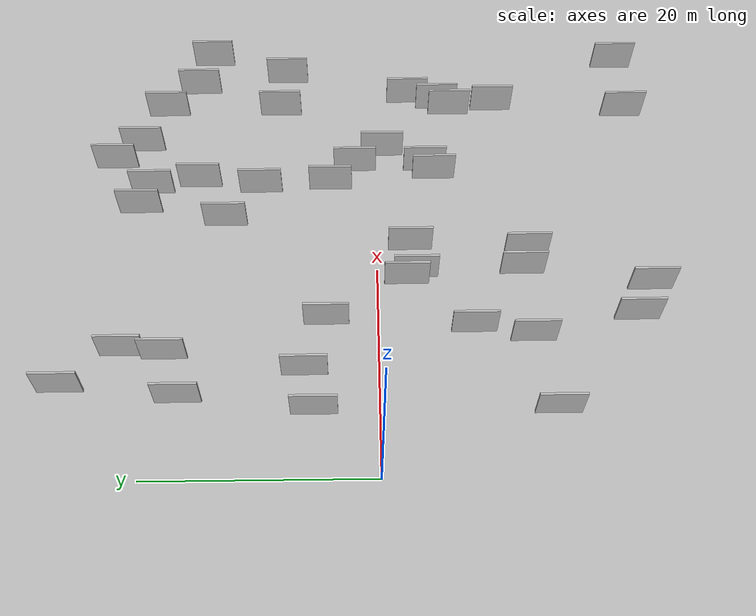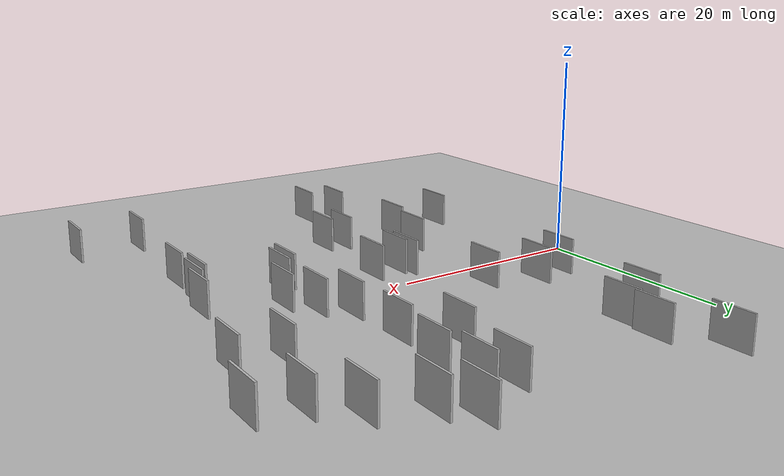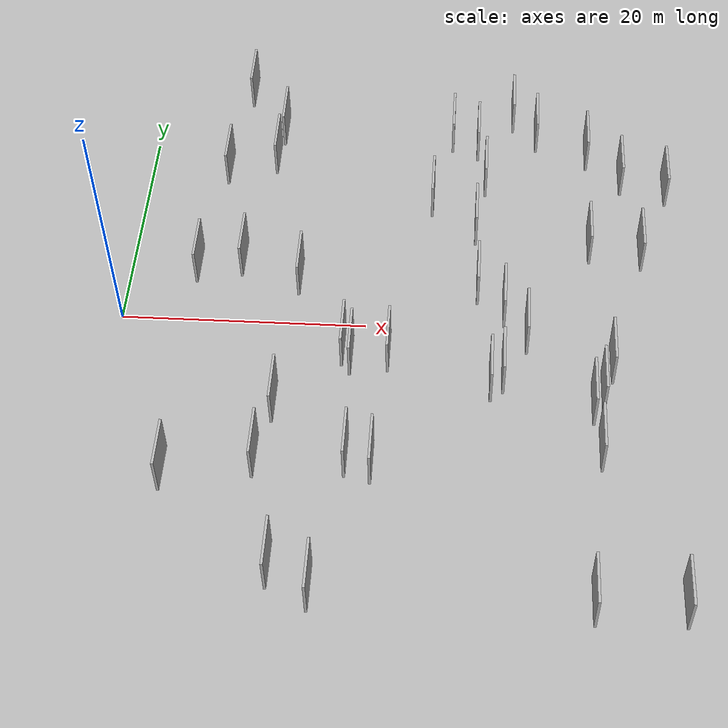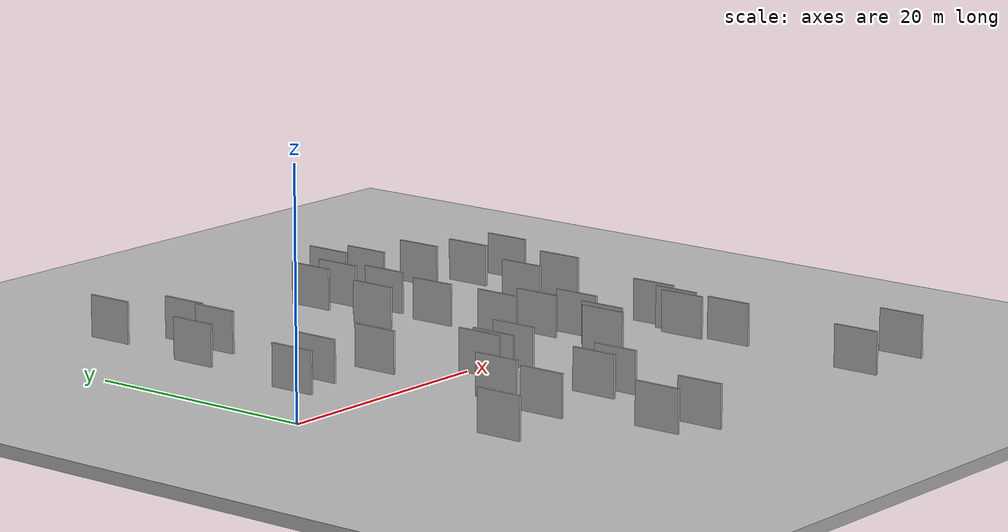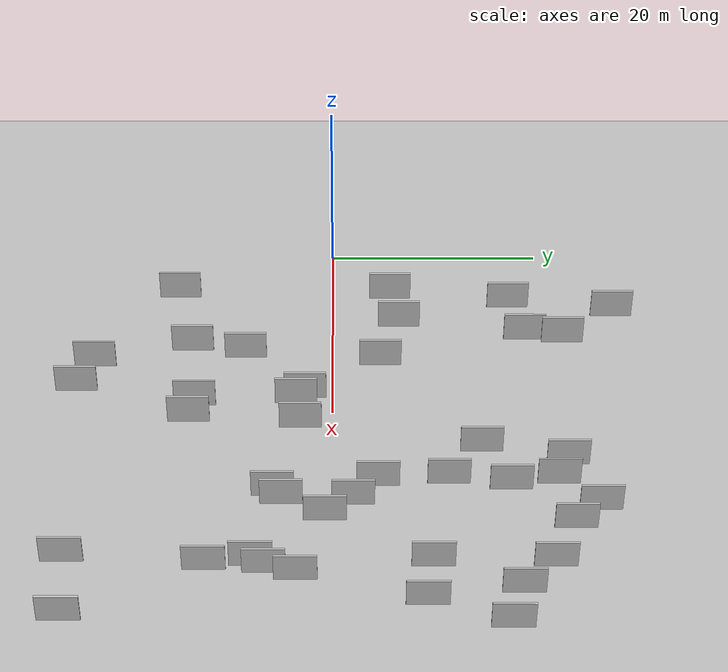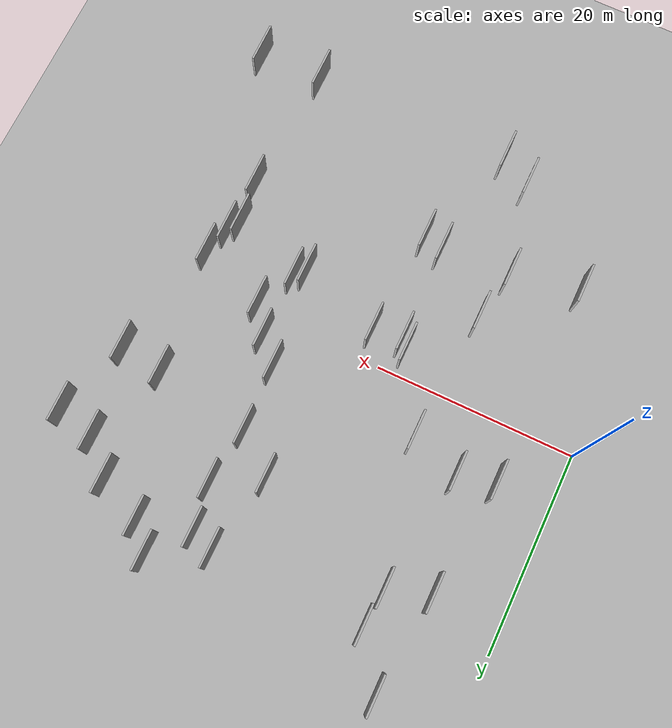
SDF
<?xml version="1.0" encoding="utf-8"?>

<sdf version="1.6">

   <world name="default">

      <gui fullscreen="0">

         <camera name="user_camera">

            <pose>-15 0 4.57585 0 0 0</pose>

            <view_controller>orbit</view_controller>

         </camera>

      </gui>

      <scene>

         <sky>

           <clouds>

             <speed>12</speed>

           </clouds>

         </sky>

         <ambient>0.4 0.4 0.4 1</ambient>

         <background>0.7 0.7 0.7 1</background>

         <shadows>1</shadows>

      </scene>

      <gravity>0 0 -9.8066</gravity>

      <magnetic_field>6e-06 2.3e-05 -4.2e-05</magnetic_field>

      <physics default="0" name="default_physics" type="ode">

         <ode>

            <solver>

               <type>quick</type>

               <iters>10</iters>

               <sor>1.0</sor>

               <use_dynamic_moi_rescaling>0</use_dynamic_moi_rescaling>

            </solver>

            <constraints>

               <cfm>0</cfm>

               <erp>0.2</erp>

               <contact_max_correcting_vel>100</contact_max_correcting_vel>

               <contact_surface_layer>0.001</contact_surface_layer>

            </constraints>

         </ode>

         <max_step_size>0.004</max_step_size>

         <real_time_factor>1</real_time_factor>

         <real_time_update_rate>250</real_time_update_rate>

      </physics>

      <light name="sun" type="directional">

         <cast_shadows>1</cast_shadows>

         <pose>0 0 10 0 0 0</pose>

         <diffuse>0.8 0.8 0.8 1</diffuse>

         <specular>0.2 0.2 0.2 1</specular>

         <attenuation>

            <range>1000</range>

            <constant>0.9</constant>

            <linear>0.01</linear>

            <quadratic>0.001</quadratic>

         </attenuation>

         <direction>-0.5 0.1 -0.9</direction>

      </light>

      <include>

         <name>ground_plane_1</name>

         <uri>model://HANNAS_ground_plane</uri>

         <pose>0 0 0  0 0 0</pose>

      </include>

      <include>

         <name>ground_plane_2</name>

         <uri>model://HANNAS_ground_plane</uri>

         <pose>100 0 0  0 0 0</pose>

      </include>

      <model name="HANNAS_wall_1">

         <static>1</static>

         <pose frame="">29.4806 16.6996 0.0 0.000000 0.000000 1.570796</pose>

         <link name="link">

            <pose frame="">0 0 2.00 0 0 0</pose>

            <collision name="collision">

               <geometry>

                  <box>

                     <size>4.00 0.2 4.00</size>

                  </box>

               </geometry>

               <max_contacts>10</max_contacts>

               <surface>

                  <contact>

                     <ode/>

                  </contact>

                  <bounce/>

                  <friction>

                     <torsional>

                        <ode/>

                     </torsional>

                     <ode/>

                  </friction>

               </surface>

            </collision>

            <visual name="visual">

               <cast_shadows>0</cast_shadows>

               <geometry>

                  <box>

                     <size>4.00 0.2 4.00</size>

                  </box>

               </geometry>

               <material>

                  <script>

                     <uri>model://HANNAS_wall/materials/scripts</uri>

                     <uri>model://HANNAS_wall/materials/textures</uri>

                     <name>vrc/HANNAS_wall</name>

                  </script>

               </material>

            </visual>

            <self_collide>0</self_collide>

            <enable_wind>0</enable_wind>

            <kinematic>0</kinematic>

         </link>

      </model>

      <model name="HANNAS_wall_2">

         <static>1</static>

         <pose frame="">38.2699 -7.3570 0.0 0.000000 0.000000 1.570796</pose>

         <link name="link">

            <pose frame="">0 0 2.00 0 0 0</pose>

            <collision name="collision">

               <geometry>

                  <box>

                     <size>4.00 0.2 4.00</size>

                  </box>

               </geometry>

               <max_contacts>10</max_contacts>

               <surface>

                  <contact>

                     <ode/>

                  </contact>

                  <bounce/>

                  <friction>

                     <torsional>

                        <ode/>

                     </torsional>

                     <ode/>

                  </friction>

               </surface>

            </collision>

            <visual name="visual">

               <cast_shadows>0</cast_shadows>

               <geometry>

                  <box>

                     <size>4.00 0.2 4.00</size>

                  </box>

               </geometry>

               <material>

                  <script>

                     <uri>model://HANNAS_wall/materials/scripts</uri>

                     <uri>model://HANNAS_wall/materials/textures</uri>

                     <name>vrc/HANNAS_wall</name>

                  </script>

               </material>

            </visual>

            <self_collide>0</self_collide>

            <enable_wind>0</enable_wind>

            <kinematic>0</kinematic>

         </link>

      </model>

      <model name="HANNAS_wall_3">

         <static>1</static>

         <pose frame="">37.8273 -24.6019 0.0 0.000000 0.000000 1.570796</pose>

         <link name="link">

            <pose frame="">0 0 2.00 0 0 0</pose>

            <collision name="collision">

               <geometry>

                  <box>

                     <size>4.00 0.2 4.00</size>

                  </box>

               </geometry>

               <max_contacts>10</max_contacts>

               <surface>

                  <contact>

                     <ode/>

                  </contact>

                  <bounce/>

                  <friction>

                     <torsional>

                        <ode/>

                     </torsional>

                     <ode/>

                  </friction>

               </surface>

            </collision>

            <visual name="visual">

               <cast_shadows>0</cast_shadows>

               <geometry>

                  <box>

                     <size>4.00 0.2 4.00</size>

                  </box>

               </geometry>

               <material>

                  <script>

                     <uri>model://HANNAS_wall/materials/scripts</uri>

                     <uri>model://HANNAS_wall/materials/textures</uri>

                     <name>vrc/HANNAS_wall</name>

                  </script>

               </material>

            </visual>

            <self_collide>0</self_collide>

            <enable_wind>0</enable_wind>

            <kinematic>0</kinematic>

         </link>

      </model>

      <model name="HANNAS_wall_4">

         <static>1</static>

         <pose frame="">6.9023 17.1128 0.0 0.000000 0.000000 1.570796</pose>

         <link name="link">

            <pose frame="">0 0 2.00 0 0 0</pose>

            <collision name="collision">

               <geometry>

                  <box>

                     <size>4.00 0.2 4.00</size>

                  </box>

               </geometry>

               <max_contacts>10</max_contacts>

               <surface>

                  <contact>

                     <ode/>

                  </contact>

                  <bounce/>

                  <friction>

                     <torsional>

                        <ode/>

                     </torsional>

                     <ode/>

                  </friction>

               </surface>

            </collision>

            <visual name="visual">

               <cast_shadows>0</cast_shadows>

               <geometry>

                  <box>

                     <size>4.00 0.2 4.00</size>

                  </box>

               </geometry>

               <material>

                  <script>

                     <uri>model://HANNAS_wall/materials/scripts</uri>

                     <uri>model://HANNAS_wall/materials/textures</uri>

                     <name>vrc/HANNAS_wall</name>

                  </script>

               </material>

            </visual>

            <self_collide>0</self_collide>

            <enable_wind>0</enable_wind>

            <kinematic>0</kinematic>

         </link>

      </model>

      <model name="HANNAS_wall_5">

         <static>1</static>

         <pose frame="">26.5202 22.1270 0.0 0.000000 0.000000 1.570796</pose>

         <link name="link">

            <pose frame="">0 0 2.00 0 0 0</pose>

            <collision name="collision">

               <geometry>

                  <box>

                     <size>4.00 0.2 4.00</size>

                  </box>

               </geometry>

               <max_contacts>10</max_contacts>

               <surface>

                  <contact>

                     <ode/>

                  </contact>

                  <bounce/>

                  <friction>

                     <torsional>

                        <ode/>

                     </torsional>

                     <ode/>

                  </friction>

               </surface>

            </collision>

            <visual name="visual">

               <cast_shadows>0</cast_shadows>

               <geometry>

                  <box>

                     <size>4.00 0.2 4.00</size>

                  </box>

               </geometry>

               <material>

                  <script>

                     <uri>model://HANNAS_wall/materials/scripts</uri>

                     <uri>model://HANNAS_wall/materials/textures</uri>

                     <name>vrc/HANNAS_wall</name>

                  </script>

               </material>

            </visual>

            <self_collide>0</self_collide>

            <enable_wind>0</enable_wind>

            <kinematic>0</kinematic>

         </link>

      </model>

      <model name="HANNAS_wall_6">

         <static>1</static>

         <pose frame="">11.0349 18.6178 0.0 0.000000 0.000000 1.570796</pose>

         <link name="link">

            <pose frame="">0 0 2.00 0 0 0</pose>

            <collision name="collision">

               <geometry>

                  <box>

                     <size>4.00 0.2 4.00</size>

                  </box>

               </geometry>

               <max_contacts>10</max_contacts>

               <surface>

                  <contact>

                     <ode/>

                  </contact>

                  <bounce/>

                  <friction>

                     <torsional>

                        <ode/>

                     </torsional>

                     <ode/>

                  </friction>

               </surface>

            </collision>

            <visual name="visual">

               <cast_shadows>0</cast_shadows>

               <geometry>

                  <box>

                     <size>4.00 0.2 4.00</size>

                  </box>

               </geometry>

               <material>

                  <script>

                     <uri>model://HANNAS_wall/materials/scripts</uri>

                     <uri>model://HANNAS_wall/materials/textures</uri>

                     <name>vrc/HANNAS_wall</name>

                  </script>

               </material>

            </visual>

            <self_collide>0</self_collide>

            <enable_wind>0</enable_wind>

            <kinematic>0</kinematic>

         </link>

      </model>

      <model name="HANNAS_wall_7">

         <static>1</static>

         <pose frame="">5.6935 5.6017 0.0 0.000000 0.000000 1.570796</pose>

         <link name="link">

            <pose frame="">0 0 2.00 0 0 0</pose>

            <collision name="collision">

               <geometry>

                  <box>

                     <size>4.00 0.2 4.00</size>

                  </box>

               </geometry>

               <max_contacts>10</max_contacts>

               <surface>

                  <contact>

                     <ode/>

                  </contact>

                  <bounce/>

                  <friction>

                     <torsional>

                        <ode/>

                     </torsional>

                     <ode/>

                  </friction>

               </surface>

            </collision>

            <visual name="visual">

               <cast_shadows>0</cast_shadows>

               <geometry>

                  <box>

                     <size>4.00 0.2 4.00</size>

                  </box>

               </geometry>

               <material>

                  <script>

                     <uri>model://HANNAS_wall/materials/scripts</uri>

                     <uri>model://HANNAS_wall/materials/textures</uri>

                     <name>vrc/HANNAS_wall</name>

                  </script>

               </material>

            </visual>

            <self_collide>0</self_collide>

            <enable_wind>0</enable_wind>

            <kinematic>0</kinematic>

         </link>

      </model>

      <model name="HANNAS_wall_8">

         <static>1</static>

         <pose frame="">5.5831 -14.9222 0.0 0.000000 0.000000 1.570796</pose>

         <link name="link">

            <pose frame="">0 0 2.00 0 0 0</pose>

            <collision name="collision">

               <geometry>

                  <box>

                     <size>4.00 0.2 4.00</size>

                  </box>

               </geometry>

               <max_contacts>10</max_contacts>

               <surface>

                  <contact>

                     <ode/>

                  </contact>

                  <bounce/>

                  <friction>

                     <torsional>

                        <ode/>

                     </torsional>

                     <ode/>

                  </friction>

               </surface>

            </collision>

            <visual name="visual">

               <cast_shadows>0</cast_shadows>

               <geometry>

                  <box>

                     <size>4.00 0.2 4.00</size>

                  </box>

               </geometry>

               <material>

                  <script>

                     <uri>model://HANNAS_wall/materials/scripts</uri>

                     <uri>model://HANNAS_wall/materials/textures</uri>

                     <name>vrc/HANNAS_wall</name>

                  </script>

               </material>

            </visual>

            <self_collide>0</self_collide>

            <enable_wind>0</enable_wind>

            <kinematic>0</kinematic>

         </link>

      </model>

      <model name="HANNAS_wall_9">

         <static>1</static>

         <pose frame="">12.4474 -13.4820 0.0 0.000000 0.000000 1.570796</pose>

         <link name="link">

            <pose frame="">0 0 2.00 0 0 0</pose>

            <collision name="collision">

               <geometry>

                  <box>

                     <size>4.00 0.2 4.00</size>

                  </box>

               </geometry>

               <max_contacts>10</max_contacts>

               <surface>

                  <contact>

                     <ode/>

                  </contact>

                  <bounce/>

                  <friction>

                     <torsional>

                        <ode/>

                     </torsional>

                     <ode/>

                  </friction>

               </surface>

            </collision>

            <visual name="visual">

               <cast_shadows>0</cast_shadows>

               <geometry>

                  <box>

                     <size>4.00 0.2 4.00</size>

                  </box>

               </geometry>

               <material>

                  <script>

                     <uri>model://HANNAS_wall/materials/scripts</uri>

                     <uri>model://HANNAS_wall/materials/textures</uri>

                     <name>vrc/HANNAS_wall</name>

                  </script>

               </material>

            </visual>

            <self_collide>0</self_collide>

            <enable_wind>0</enable_wind>

            <kinematic>0</kinematic>

         </link>

      </model>

      <model name="HANNAS_wall_10">

         <static>1</static>

         <pose frame="">28.7693 10.9153 0.0 0.000000 0.000000 1.570796</pose>

         <link name="link">

            <pose frame="">0 0 2.00 0 0 0</pose>

            <collision name="collision">

               <geometry>

                  <box>

                     <size>4.00 0.2 4.00</size>

                  </box>

               </geometry>

               <max_contacts>10</max_contacts>

               <surface>

                  <contact>

                     <ode/>

                  </contact>

                  <bounce/>

                  <friction>

                     <torsional>

                        <ode/>

                     </torsional>

                     <ode/>

                  </friction>

               </surface>

            </collision>

            <visual name="visual">

               <cast_shadows>0</cast_shadows>

               <geometry>

                  <box>

                     <size>4.00 0.2 4.00</size>

                  </box>

               </geometry>

               <material>

                  <script>

                     <uri>model://HANNAS_wall/materials/scripts</uri>

                     <uri>model://HANNAS_wall/materials/textures</uri>

                     <name>vrc/HANNAS_wall</name>

                  </script>

               </material>

            </visual>

            <self_collide>0</self_collide>

            <enable_wind>0</enable_wind>

            <kinematic>0</kinematic>

         </link>

      </model>

      <model name="HANNAS_wall_11">

         <static>1</static>

         <pose frame="">42.6515 8.7122 0.0 0.000000 0.000000 1.570796</pose>

         <link name="link">

            <pose frame="">0 0 2.00 0 0 0</pose>

            <collision name="collision">

               <geometry>

                  <box>

                     <size>4.00 0.2 4.00</size>

                  </box>

               </geometry>

               <max_contacts>10</max_contacts>

               <surface>

                  <contact>

                     <ode/>

                  </contact>

                  <bounce/>

                  <friction>

                     <torsional>

                        <ode/>

                     </torsional>

                     <ode/>

                  </friction>

               </surface>

            </collision>

            <visual name="visual">

               <cast_shadows>0</cast_shadows>

               <geometry>

                  <box>

                     <size>4.00 0.2 4.00</size>

                  </box>

               </geometry>

               <material>

                  <script>

                     <uri>model://HANNAS_wall/materials/scripts</uri>

                     <uri>model://HANNAS_wall/materials/textures</uri>

                     <name>vrc/HANNAS_wall</name>

                  </script>

               </material>

            </visual>

            <self_collide>0</self_collide>

            <enable_wind>0</enable_wind>

            <kinematic>0</kinematic>

         </link>

      </model>

      <model name="HANNAS_wall_12">

         <static>1</static>

         <pose frame="">30.2467 -5.4993 0.0 0.000000 0.000000 1.570796</pose>

         <link name="link">

            <pose frame="">0 0 2.00 0 0 0</pose>

            <collision name="collision">

               <geometry>

                  <box>

                     <size>4.00 0.2 4.00</size>

                  </box>

               </geometry>

               <max_contacts>10</max_contacts>

               <surface>

                  <contact>

                     <ode/>

                  </contact>

                  <bounce/>

                  <friction>

                     <torsional>

                        <ode/>

                     </torsional>

                     <ode/>

                  </friction>

               </surface>

            </collision>

            <visual name="visual">

               <cast_shadows>0</cast_shadows>

               <geometry>

                  <box>

                     <size>4.00 0.2 4.00</size>

                  </box>

               </geometry>

               <material>

                  <script>

                     <uri>model://HANNAS_wall/materials/scripts</uri>

                     <uri>model://HANNAS_wall/materials/textures</uri>

                     <name>vrc/HANNAS_wall</name>

                  </script>

               </material>

            </visual>

            <self_collide>0</self_collide>

            <enable_wind>0</enable_wind>

            <kinematic>0</kinematic>

         </link>

      </model>

      <model name="HANNAS_wall_13">

         <static>1</static>

         <pose frame="">18.3872 -2.5767 0.0 0.000000 0.000000 1.570796</pose>

         <link name="link">

            <pose frame="">0 0 2.00 0 0 0</pose>

            <collision name="collision">

               <geometry>

                  <box>

                     <size>4.00 0.2 4.00</size>

                  </box>

               </geometry>

               <max_contacts>10</max_contacts>

               <surface>

                  <contact>

                     <ode/>

                  </contact>

                  <bounce/>

                  <friction>

                     <torsional>

                        <ode/>

                     </torsional>

                     <ode/>

                  </friction>

               </surface>

            </collision>

            <visual name="visual">

               <cast_shadows>0</cast_shadows>

               <geometry>

                  <box>

                     <size>4.00 0.2 4.00</size>

                  </box>

               </geometry>

               <material>

                  <script>

                     <uri>model://HANNAS_wall/materials/scripts</uri>

                     <uri>model://HANNAS_wall/materials/textures</uri>

                     <name>vrc/HANNAS_wall</name>

                  </script>

               </material>

            </visual>

            <self_collide>0</self_collide>

            <enable_wind>0</enable_wind>

            <kinematic>0</kinematic>

         </link>

      </model>

      <model name="HANNAS_wall_14">

         <static>1</static>

         <pose frame="">39.0741 -6.1592 0.0 0.000000 0.000000 1.570796</pose>

         <link name="link">

            <pose frame="">0 0 2.00 0 0 0</pose>

            <collision name="collision">

               <geometry>

                  <box>

                     <size>4.00 0.2 4.00</size>

                  </box>

               </geometry>

               <max_contacts>10</max_contacts>

               <surface>

                  <contact>

                     <ode/>

                  </contact>

                  <bounce/>

                  <friction>

                     <torsional>

                        <ode/>

                     </torsional>

                     <ode/>

                  </friction>

               </surface>

            </collision>

            <visual name="visual">

               <cast_shadows>0</cast_shadows>

               <geometry>

                  <box>

                     <size>4.00 0.2 4.00</size>

                  </box>

               </geometry>

               <material>

                  <script>

                     <uri>model://HANNAS_wall/materials/scripts</uri>

                     <uri>model://HANNAS_wall/materials/textures</uri>

                     <name>vrc/HANNAS_wall</name>

                  </script>

               </material>

            </visual>

            <self_collide>0</self_collide>

            <enable_wind>0</enable_wind>

            <kinematic>0</kinematic>

         </link>

      </model>

      <model name="HANNAS_wall_15">

         <static>1</static>

         <pose frame="">41.2561 17.4411 0.0 0.000000 0.000000 1.570796</pose>

         <link name="link">

            <pose frame="">0 0 2.00 0 0 0</pose>

            <collision name="collision">

               <geometry>

                  <box>

                     <size>4.00 0.2 4.00</size>

                  </box>

               </geometry>

               <max_contacts>10</max_contacts>

               <surface>

                  <contact>

                     <ode/>

                  </contact>

                  <bounce/>

                  <friction>

                     <torsional>

                        <ode/>

                     </torsional>

                     <ode/>

                  </friction>

               </surface>

            </collision>

            <visual name="visual">

               <cast_shadows>0</cast_shadows>

               <geometry>

                  <box>

                     <size>4.00 0.2 4.00</size>

                  </box>

               </geometry>

               <material>

                  <script>

                     <uri>model://HANNAS_wall/materials/scripts</uri>

                     <uri>model://HANNAS_wall/materials/textures</uri>

                     <name>vrc/HANNAS_wall</name>

                  </script>

               </material>

            </visual>

            <self_collide>0</self_collide>

            <enable_wind>0</enable_wind>

            <kinematic>0</kinematic>

         </link>

      </model>

      <model name="HANNAS_wall_16">

         <static>1</static>

         <pose frame="">38.3568 20.4341 0.0 0.000000 0.000000 1.570796</pose>

         <link name="link">

            <pose frame="">0 0 2.00 0 0 0</pose>

            <collision name="collision">

               <geometry>

                  <box>

                     <size>4.00 0.2 4.00</size>

                  </box>

               </geometry>

               <max_contacts>10</max_contacts>

               <surface>

                  <contact>

                     <ode/>

                  </contact>

                  <bounce/>

                  <friction>

                     <torsional>

                        <ode/>

                     </torsional>

                     <ode/>

                  </friction>

               </surface>

            </collision>

            <visual name="visual">

               <cast_shadows>0</cast_shadows>

               <geometry>

                  <box>

                     <size>4.00 0.2 4.00</size>

                  </box>

               </geometry>

               <material>

                  <script>

                     <uri>model://HANNAS_wall/materials/scripts</uri>

                     <uri>model://HANNAS_wall/materials/textures</uri>

                     <name>vrc/HANNAS_wall</name>

                  </script>

               </material>

            </visual>

            <self_collide>0</self_collide>

            <enable_wind>0</enable_wind>

            <kinematic>0</kinematic>

         </link>

      </model>

      <model name="HANNAS_wall_17">

         <static>1</static>

         <pose frame="">17.5660 -24.4572 0.0 0.000000 0.000000 1.570796</pose>

         <link name="link">

            <pose frame="">0 0 2.00 0 0 0</pose>

            <collision name="collision">

               <geometry>

                  <box>

                     <size>4.00 0.2 4.00</size>

                  </box>

               </geometry>

               <max_contacts>10</max_contacts>

               <surface>

                  <contact>

                     <ode/>

                  </contact>

                  <bounce/>

                  <friction>

                     <torsional>

                        <ode/>

                     </torsional>

                     <ode/>

                  </friction>

               </surface>

            </collision>

            <visual name="visual">

               <cast_shadows>0</cast_shadows>

               <geometry>

                  <box>

                     <size>4.00 0.2 4.00</size>

                  </box>

               </geometry>

               <material>

                  <script>

                     <uri>model://HANNAS_wall/materials/scripts</uri>

                     <uri>model://HANNAS_wall/materials/textures</uri>

                     <name>vrc/HANNAS_wall</name>

                  </script>

               </material>

            </visual>

            <self_collide>0</self_collide>

            <enable_wind>0</enable_wind>

            <kinematic>0</kinematic>

         </link>

      </model>

      <model name="HANNAS_wall_18">

         <static>1</static>

         <pose frame="">14.4751 -22.8161 0.0 0.000000 0.000000 1.570796</pose>

         <link name="link">

            <pose frame="">0 0 2.00 0 0 0</pose>

            <collision name="collision">

               <geometry>

                  <box>

                     <size>4.00 0.2 4.00</size>

                  </box>

               </geometry>

               <max_contacts>10</max_contacts>

               <surface>

                  <contact>

                     <ode/>

                  </contact>

                  <bounce/>

                  <friction>

                     <torsional>

                        <ode/>

                     </torsional>

                     <ode/>

                  </friction>

               </surface>

            </collision>

            <visual name="visual">

               <cast_shadows>0</cast_shadows>

               <geometry>

                  <box>

                     <size>4.00 0.2 4.00</size>

                  </box>

               </geometry>

               <material>

                  <script>

                     <uri>model://HANNAS_wall/materials/scripts</uri>

                     <uri>model://HANNAS_wall/materials/textures</uri>

                     <name>vrc/HANNAS_wall</name>

                  </script>

               </material>

            </visual>

            <self_collide>0</self_collide>

            <enable_wind>0</enable_wind>

            <kinematic>0</kinematic>

         </link>

      </model>

      <model name="HANNAS_wall_19">

         <static>1</static>

         <pose frame="">31.8663 24.9153 0.0 0.000000 0.000000 1.570796</pose>

         <link name="link">

            <pose frame="">0 0 2.00 0 0 0</pose>

            <collision name="collision">

               <geometry>

                  <box>

                     <size>4.00 0.2 4.00</size>

                  </box>

               </geometry>

               <max_contacts>10</max_contacts>

               <surface>

                  <contact>

                     <ode/>

                  </contact>

                  <bounce/>

                  <friction>

                     <torsional>

                        <ode/>

                     </torsional>

                     <ode/>

                  </friction>

               </surface>

            </collision>

            <visual name="visual">

               <cast_shadows>0</cast_shadows>

               <geometry>

                  <box>

                     <size>4.00 0.2 4.00</size>

                  </box>

               </geometry>

               <material>

                  <script>

                     <uri>model://HANNAS_wall/materials/scripts</uri>

                     <uri>model://HANNAS_wall/materials/textures</uri>

                     <name>vrc/HANNAS_wall</name>

                  </script>

               </material>

            </visual>

            <self_collide>0</self_collide>

            <enable_wind>0</enable_wind>

            <kinematic>0</kinematic>

         </link>

      </model>

      <model name="HANNAS_wall_20">

         <static>1</static>

         <pose frame="">31.2213 -4.6838 0.0 0.000000 0.000000 1.570796</pose>

         <link name="link">

            <pose frame="">0 0 2.00 0 0 0</pose>

            <collision name="collision">

               <geometry>

                  <box>

                     <size>4.00 0.2 4.00</size>

                  </box>

               </geometry>

               <max_contacts>10</max_contacts>

               <surface>

                  <contact>

                     <ode/>

                  </contact>

                  <bounce/>

                  <friction>

                     <torsional>

                        <ode/>

                     </torsional>

                     <ode/>

                  </friction>

               </surface>

            </collision>

            <visual name="visual">

               <cast_shadows>0</cast_shadows>

               <geometry>

                  <box>

                     <size>4.00 0.2 4.00</size>

                  </box>

               </geometry>

               <material>

                  <script>

                     <uri>model://HANNAS_wall/materials/scripts</uri>

                     <uri>model://HANNAS_wall/materials/textures</uri>

                     <name>vrc/HANNAS_wall</name>

                  </script>

               </material>

            </visual>

            <self_collide>0</self_collide>

            <enable_wind>0</enable_wind>

            <kinematic>0</kinematic>

         </link>

      </model>

      <model name="HANNAS_wall_21">

         <static>1</static>

         <pose frame="">13.3891 -8.3445 0.0 0.000000 0.000000 1.570796</pose>

         <link name="link">

            <pose frame="">0 0 2.00 0 0 0</pose>

            <collision name="collision">

               <geometry>

                  <box>

                     <size>4.00 0.2 4.00</size>

                  </box>

               </geometry>

               <max_contacts>10</max_contacts>

               <surface>

                  <contact>

                     <ode/>

                  </contact>

                  <bounce/>

                  <friction>

                     <torsional>

                        <ode/>

                     </torsional>

                     <ode/>

                  </friction>

               </surface>

            </collision>

            <visual name="visual">

               <cast_shadows>0</cast_shadows>

               <geometry>

                  <box>

                     <size>4.00 0.2 4.00</size>

                  </box>

               </geometry>

               <material>

                  <script>

                     <uri>model://HANNAS_wall/materials/scripts</uri>

                     <uri>model://HANNAS_wall/materials/textures</uri>

                     <name>vrc/HANNAS_wall</name>

                  </script>

               </material>

            </visual>

            <self_collide>0</self_collide>

            <enable_wind>0</enable_wind>

            <kinematic>0</kinematic>

         </link>

      </model>

      <model name="HANNAS_wall_22">

         <static>1</static>

         <pose frame="">33.0888 -0.6318 0.0 0.000000 0.000000 1.570796</pose>

         <link name="link">

            <pose frame="">0 0 2.00 0 0 0</pose>

            <collision name="collision">

               <geometry>

                  <box>

                     <size>4.00 0.2 4.00</size>

                  </box>

               </geometry>

               <max_contacts>10</max_contacts>

               <surface>

                  <contact>

                     <ode/>

                  </contact>

                  <bounce/>

                  <friction>

                     <torsional>

                        <ode/>

                     </torsional>

                     <ode/>

                  </friction>

               </surface>

            </collision>

            <visual name="visual">

               <cast_shadows>0</cast_shadows>

               <geometry>

                  <box>

                     <size>4.00 0.2 4.00</size>

                  </box>

               </geometry>

               <material>

                  <script>

                     <uri>model://HANNAS_wall/materials/scripts</uri>

                     <uri>model://HANNAS_wall/materials/textures</uri>

                     <name>vrc/HANNAS_wall</name>

                  </script>

               </material>

            </visual>

            <self_collide>0</self_collide>

            <enable_wind>0</enable_wind>

            <kinematic>0</kinematic>

         </link>

      </model>

      <model name="HANNAS_wall_23">

         <static>1</static>

         <pose frame="">21.3471 -13.6108 0.0 0.000000 0.000000 1.570796</pose>

         <link name="link">

            <pose frame="">0 0 2.00 0 0 0</pose>

            <collision name="collision">

               <geometry>

                  <box>

                     <size>4.00 0.2 4.00</size>

                  </box>

               </geometry>

               <max_contacts>10</max_contacts>

               <surface>

                  <contact>

                     <ode/>

                  </contact>

                  <bounce/>

                  <friction>

                     <torsional>

                        <ode/>

                     </torsional>

                     <ode/>

                  </friction>

               </surface>

            </collision>

            <visual name="visual">

               <cast_shadows>0</cast_shadows>

               <geometry>

                  <box>

                     <size>4.00 0.2 4.00</size>

                  </box>

               </geometry>

               <material>

                  <script>

                     <uri>model://HANNAS_wall/materials/scripts</uri>

                     <uri>model://HANNAS_wall/materials/textures</uri>

                     <name>vrc/HANNAS_wall</name>

                  </script>

               </material>

            </visual>

            <self_collide>0</self_collide>

            <enable_wind>0</enable_wind>

            <kinematic>0</kinematic>

         </link>

      </model>

      <model name="HANNAS_wall_24">

         <static>1</static>

         <pose frame="">29.0534 4.3190 0.0 0.000000 0.000000 1.570796</pose>

         <link name="link">

            <pose frame="">0 0 2.00 0 0 0</pose>

            <collision name="collision">

               <geometry>

                  <box>

                     <size>4.00 0.2 4.00</size>

                  </box>

               </geometry>

               <max_contacts>10</max_contacts>

               <surface>

                  <contact>

                     <ode/>

                  </contact>

                  <bounce/>

                  <friction>

                     <torsional>

                        <ode/>

                     </torsional>

                     <ode/>

                  </friction>

               </surface>

            </collision>

            <visual name="visual">

               <cast_shadows>0</cast_shadows>

               <geometry>

                  <box>

                     <size>4.00 0.2 4.00</size>

                  </box>

               </geometry>

               <material>

                  <script>

                     <uri>model://HANNAS_wall/materials/scripts</uri>

                     <uri>model://HANNAS_wall/materials/textures</uri>

                     <name>vrc/HANNAS_wall</name>

                  </script>

               </material>

            </visual>

            <self_collide>0</self_collide>

            <enable_wind>0</enable_wind>

            <kinematic>0</kinematic>

         </link>

      </model>

      <model name="HANNAS_wall_25">

         <static>1</static>

         <pose frame="">44.3422 -24.4508 0.0 0.000000 0.000000 1.570796</pose>

         <link name="link">

            <pose frame="">0 0 2.00 0 0 0</pose>

            <collision name="collision">

               <geometry>

                  <box>

                     <size>4.00 0.2 4.00</size>

                  </box>

               </geometry>

               <max_contacts>10</max_contacts>

               <surface>

                  <contact>

                     <ode/>

                  </contact>

                  <bounce/>

                  <friction>

                     <torsional>

                        <ode/>

                     </torsional>

                     <ode/>

                  </friction>

               </surface>

            </collision>

            <visual name="visual">

               <cast_shadows>0</cast_shadows>

               <geometry>

                  <box>

                     <size>4.00 0.2 4.00</size>

                  </box>

               </geometry>

               <material>

                  <script>

                     <uri>model://HANNAS_wall/materials/scripts</uri>

                     <uri>model://HANNAS_wall/materials/textures</uri>

                     <name>vrc/HANNAS_wall</name>

                  </script>

               </material>

            </visual>

            <self_collide>0</self_collide>

            <enable_wind>0</enable_wind>

            <kinematic>0</kinematic>

         </link>

      </model>

      <model name="HANNAS_wall_26">

         <static>1</static>

         <pose frame="">33.9357 22.5125 0.0 0.000000 0.000000 1.570796</pose>

         <link name="link">

            <pose frame="">0 0 2.00 0 0 0</pose>

            <collision name="collision">

               <geometry>

                  <box>

                     <size>4.00 0.2 4.00</size>

                  </box>

               </geometry>

               <max_contacts>10</max_contacts>

               <surface>

                  <contact>

                     <ode/>

                  </contact>

                  <bounce/>

                  <friction>

                     <torsional>

                        <ode/>

                     </torsional>

                     <ode/>

                  </friction>

               </surface>

            </collision>

            <visual name="visual">

               <cast_shadows>0</cast_shadows>

               <geometry>

                  <box>

                     <size>4.00 0.2 4.00</size>

                  </box>

               </geometry>

               <material>

                  <script>

                     <uri>model://HANNAS_wall/materials/scripts</uri>

                     <uri>model://HANNAS_wall/materials/textures</uri>

                     <name>vrc/HANNAS_wall</name>

                  </script>

               </material>

            </visual>

            <self_collide>0</self_collide>

            <enable_wind>0</enable_wind>

            <kinematic>0</kinematic>

         </link>

      </model>

      <model name="HANNAS_wall_27">

         <static>1</static>

         <pose frame="">11.3929 22.2694 0.0 0.000000 0.000000 1.570796</pose>

         <link name="link">

            <pose frame="">0 0 2.00 0 0 0</pose>

            <collision name="collision">

               <geometry>

                  <box>

                     <size>4.00 0.2 4.00</size>

                  </box>

               </geometry>

               <max_contacts>10</max_contacts>

               <surface>

                  <contact>

                     <ode/>

                  </contact>

                  <bounce/>

                  <friction>

                     <torsional>

                        <ode/>

                     </torsional>

                     <ode/>

                  </friction>

               </surface>

            </collision>

            <visual name="visual">

               <cast_shadows>0</cast_shadows>

               <geometry>

                  <box>

                     <size>4.00 0.2 4.00</size>

                  </box>

               </geometry>

               <material>

                  <script>

                     <uri>model://HANNAS_wall/materials/scripts</uri>

                     <uri>model://HANNAS_wall/materials/textures</uri>

                     <name>vrc/HANNAS_wall</name>

                  </script>

               </material>

            </visual>

            <self_collide>0</self_collide>

            <enable_wind>0</enable_wind>

            <kinematic>0</kinematic>

         </link>

      </model>

      <model name="HANNAS_wall_28">

         <static>1</static>

         <pose frame="">38.3290 9.2929 0.0 0.000000 0.000000 1.570796</pose>

         <link name="link">

            <pose frame="">0 0 2.00 0 0 0</pose>

            <collision name="collision">

               <geometry>

                  <box>

                     <size>4.00 0.2 4.00</size>

                  </box>

               </geometry>

               <max_contacts>10</max_contacts>

               <surface>

                  <contact>

                     <ode/>

                  </contact>

                  <bounce/>

                  <friction>

                     <torsional>

                        <ode/>

                     </torsional>

                     <ode/>

                  </friction>

               </surface>

            </collision>

            <visual name="visual">

               <cast_shadows>0</cast_shadows>

               <geometry>

                  <box>

                     <size>4.00 0.2 4.00</size>

                  </box>

               </geometry>

               <material>

                  <script>

                     <uri>model://HANNAS_wall/materials/scripts</uri>

                     <uri>model://HANNAS_wall/materials/textures</uri>

                     <name>vrc/HANNAS_wall</name>

                  </script>

               </material>

            </visual>

            <self_collide>0</self_collide>

            <enable_wind>0</enable_wind>

            <kinematic>0</kinematic>

         </link>

      </model>

      <model name="HANNAS_wall_29">

         <static>1</static>

         <pose frame="">31.2371 1.9903 0.0 0.000000 0.000000 1.570796</pose>

         <link name="link">

            <pose frame="">0 0 2.00 0 0 0</pose>

            <collision name="collision">

               <geometry>

                  <box>

                     <size>4.00 0.2 4.00</size>

                  </box>

               </geometry>

               <max_contacts>10</max_contacts>

               <surface>

                  <contact>

                     <ode/>

                  </contact>

                  <bounce/>

                  <friction>

                     <torsional>

                        <ode/>

                     </torsional>

                     <ode/>

                  </friction>

               </surface>

            </collision>

            <visual name="visual">

               <cast_shadows>0</cast_shadows>

               <geometry>

                  <box>

                     <size>4.00 0.2 4.00</size>

                  </box>

               </geometry>

               <material>

                  <script>

                     <uri>model://HANNAS_wall/materials/scripts</uri>

                     <uri>model://HANNAS_wall/materials/textures</uri>

                     <name>vrc/HANNAS_wall</name>

                  </script>

               </material>

            </visual>

            <self_collide>0</self_collide>

            <enable_wind>0</enable_wind>

            <kinematic>0</kinematic>

         </link>

      </model>

      <model name="HANNAS_wall_30">

         <static>1</static>

         <pose frame="">9.3657 6.4609 0.0 0.000000 0.000000 1.570796</pose>

         <link name="link">

            <pose frame="">0 0 2.00 0 0 0</pose>

            <collision name="collision">

               <geometry>

                  <box>

                     <size>4.00 0.2 4.00</size>

                  </box>

               </geometry>

               <max_contacts>10</max_contacts>

               <surface>

                  <contact>

                     <ode/>

                  </contact>

                  <bounce/>

                  <friction>

                     <torsional>

                        <ode/>

                     </torsional>

                     <ode/>

                  </friction>

               </surface>

            </collision>

            <visual name="visual">

               <cast_shadows>0</cast_shadows>

               <geometry>

                  <box>

                     <size>4.00 0.2 4.00</size>

                  </box>

               </geometry>

               <material>

                  <script>

                     <uri>model://HANNAS_wall/materials/scripts</uri>

                     <uri>model://HANNAS_wall/materials/textures</uri>

                     <name>vrc/HANNAS_wall</name>

                  </script>

               </material>

            </visual>

            <self_collide>0</self_collide>

            <enable_wind>0</enable_wind>

            <kinematic>0</kinematic>

         </link>

      </model>

      <model name="HANNAS_wall_31">

         <static>1</static>

         <pose frame="">19.0783 -3.4310 0.0 0.000000 0.000000 1.570796</pose>

         <link name="link">

            <pose frame="">0 0 2.00 0 0 0</pose>

            <collision name="collision">

               <geometry>

                  <box>

                     <size>4.00 0.2 4.00</size>

                  </box>

               </geometry>

               <max_contacts>10</max_contacts>

               <surface>

                  <contact>

                     <ode/>

                  </contact>

                  <bounce/>

                  <friction>

                     <torsional>

                        <ode/>

                     </torsional>

                     <ode/>

                  </friction>

               </surface>

            </collision>

            <visual name="visual">

               <cast_shadows>0</cast_shadows>

               <geometry>

                  <box>

                     <size>4.00 0.2 4.00</size>

                  </box>

               </geometry>

               <material>

                  <script>

                     <uri>model://HANNAS_wall/materials/scripts</uri>

                     <uri>model://HANNAS_wall/materials/textures</uri>

                     <name>vrc/HANNAS_wall</name>

                  </script>

               </material>

            </visual>

            <self_collide>0</self_collide>

            <enable_wind>0</enable_wind>

            <kinematic>0</kinematic>

         </link>

      </model>

      <model name="HANNAS_wall_32">

         <static>1</static>

         <pose frame="">28.7641 21.1663 0.0 0.000000 0.000000 1.570796</pose>

         <link name="link">

            <pose frame="">0 0 2.00 0 0 0</pose>

            <collision name="collision">

               <geometry>

                  <box>

                     <size>4.00 0.2 4.00</size>

                  </box>

               </geometry>

               <max_contacts>10</max_contacts>

               <surface>

                  <contact>

                     <ode/>

                  </contact>

                  <bounce/>

                  <friction>

                     <torsional>

                        <ode/>

                     </torsional>

                     <ode/>

                  </friction>

               </surface>

            </collision>

            <visual name="visual">

               <cast_shadows>0</cast_shadows>

               <geometry>

                  <box>

                     <size>4.00 0.2 4.00</size>

                  </box>

               </geometry>

               <material>

                  <script>

                     <uri>model://HANNAS_wall/materials/scripts</uri>

                     <uri>model://HANNAS_wall/materials/textures</uri>

                     <name>vrc/HANNAS_wall</name>

                  </script>

               </material>

            </visual>

            <self_collide>0</self_collide>

            <enable_wind>0</enable_wind>

            <kinematic>0</kinematic>

         </link>

      </model>

      <model name="HANNAS_wall_33">

         <static>1</static>

         <pose frame="">7.9843 27.2014 0.0 0.000000 0.000000 1.570796</pose>

         <link name="link">

            <pose frame="">0 0 2.00 0 0 0</pose>

            <collision name="collision">

               <geometry>

                  <box>

                     <size>4.00 0.2 4.00</size>

                  </box>

               </geometry>

               <max_contacts>10</max_contacts>

               <surface>

                  <contact>

                     <ode/>

                  </contact>

                  <bounce/>

                  <friction>

                     <torsional>

                        <ode/>

                     </torsional>

                     <ode/>

                  </friction>

               </surface>

            </collision>

            <visual name="visual">

               <cast_shadows>0</cast_shadows>

               <geometry>

                  <box>

                     <size>4.00 0.2 4.00</size>

                  </box>

               </geometry>

               <material>

                  <script>

                     <uri>model://HANNAS_wall/materials/scripts</uri>

                     <uri>model://HANNAS_wall/materials/textures</uri>

                     <name>vrc/HANNAS_wall</name>

                  </script>

               </material>

            </visual>

            <self_collide>0</self_collide>

            <enable_wind>0</enable_wind>

            <kinematic>0</kinematic>

         </link>

      </model>

      <model name="HANNAS_wall_34">

         <static>1</static>

         <pose frame="">39.8619 -3.2701 0.0 0.000000 0.000000 1.570796</pose>

         <link name="link">

            <pose frame="">0 0 2.00 0 0 0</pose>

            <collision name="collision">

               <geometry>

                  <box>

                     <size>4.00 0.2 4.00</size>

                  </box>

               </geometry>

               <max_contacts>10</max_contacts>

               <surface>

                  <contact>

                     <ode/>

                  </contact>

                  <bounce/>

                  <friction>

                     <torsional>

                        <ode/>

                     </torsional>

                     <ode/>

                  </friction>

               </surface>

            </collision>

            <visual name="visual">

               <cast_shadows>0</cast_shadows>

               <geometry>

                  <box>

                     <size>4.00 0.2 4.00</size>

                  </box>

               </geometry>

               <material>

                  <script>

                     <uri>model://HANNAS_wall/materials/scripts</uri>

                     <uri>model://HANNAS_wall/materials/textures</uri>

                     <name>vrc/HANNAS_wall</name>

                  </script>

               </material>

            </visual>

            <self_collide>0</self_collide>

            <enable_wind>0</enable_wind>

            <kinematic>0</kinematic>

         </link>

      </model>

      <model name="HANNAS_wall_35">

         <static>1</static>

         <pose frame="">38.7597 -11.6119 0.0 0.000000 0.000000 1.570796</pose>

         <link name="link">

            <pose frame="">0 0 2.00 0 0 0</pose>

            <collision name="collision">

               <geometry>

                  <box>

                     <size>4.00 0.2 4.00</size>

                  </box>

               </geometry>

               <max_contacts>10</max_contacts>

               <surface>

                  <contact>

                     <ode/>

                  </contact>

                  <bounce/>

                  <friction>

                     <torsional>

                        <ode/>

                     </torsional>

                     <ode/>

                  </friction>

               </surface>

            </collision>

            <visual name="visual">

               <cast_shadows>0</cast_shadows>

               <geometry>

                  <box>

                     <size>4.00 0.2 4.00</size>

                  </box>

               </geometry>

               <material>

                  <script>

                     <uri>model://HANNAS_wall/materials/scripts</uri>

                     <uri>model://HANNAS_wall/materials/textures</uri>

                     <name>vrc/HANNAS_wall</name>

                  </script>

               </material>

            </visual>

            <self_collide>0</self_collide>

            <enable_wind>0</enable_wind>

            <kinematic>0</kinematic>

         </link>

      </model>

      <model name="HANNAS_wall_36">

         <static>1</static>

         <pose frame="">24.9702 14.0693 0.0 0.000000 0.000000 1.570796</pose>

         <link name="link">

            <pose frame="">0 0 2.00 0 0 0</pose>

            <collision name="collision">

               <geometry>

                  <box>

                     <size>4.00 0.2 4.00</size>

                  </box>

               </geometry>

               <max_contacts>10</max_contacts>

               <surface>

                  <contact>

                     <ode/>

                  </contact>

                  <bounce/>

                  <friction>

                     <torsional>

                        <ode/>

                     </torsional>

                     <ode/>

                  </friction>

               </surface>

            </collision>

            <visual name="visual">

               <cast_shadows>0</cast_shadows>

               <geometry>

                  <box>

                     <size>4.00 0.2 4.00</size>

                  </box>

               </geometry>

               <material>

                  <script>

                     <uri>model://HANNAS_wall/materials/scripts</uri>

                     <uri>model://HANNAS_wall/materials/textures</uri>

                     <name>vrc/HANNAS_wall</name>

                  </script>

               </material>

            </visual>

            <self_collide>0</self_collide>

            <enable_wind>0</enable_wind>

            <kinematic>0</kinematic>

         </link>

      </model>

      <model name="HANNAS_wall_37">

         <static>1</static>

         <pose frame="">19.3540 -13.0891 0.0 0.000000 0.000000 1.570796</pose>

         <link name="link">

            <pose frame="">0 0 2.00 0 0 0</pose>

            <collision name="collision">

               <geometry>

                  <box>

                     <size>4.00 0.2 4.00</size>

                  </box>

               </geometry>

               <max_contacts>10</max_contacts>

               <surface>

                  <contact>

                     <ode/>

                  </contact>

                  <bounce/>

                  <friction>

                     <torsional>

                        <ode/>

                     </torsional>

                     <ode/>

                  </friction>

               </surface>

            </collision>

            <visual name="visual">

               <cast_shadows>0</cast_shadows>

               <geometry>

                  <box>

                     <size>4.00 0.2 4.00</size>

                  </box>

               </geometry>

               <material>

                  <script>

                     <uri>model://HANNAS_wall/materials/scripts</uri>

                     <uri>model://HANNAS_wall/materials/textures</uri>

                     <name>vrc/HANNAS_wall</name>

                  </script>

               </material>

            </visual>

            <self_collide>0</self_collide>

            <enable_wind>0</enable_wind>

            <kinematic>0</kinematic>

         </link>

      </model>

      <model name="HANNAS_wall_38">

         <static>1</static>

         <pose frame="">14.2920 4.6270 0.0 0.000000 0.000000 1.570796</pose>

         <link name="link">

            <pose frame="">0 0 2.00 0 0 0</pose>

            <collision name="collision">

               <geometry>

                  <box>

                     <size>4.00 0.2 4.00</size>

                  </box>

               </geometry>

               <max_contacts>10</max_contacts>

               <surface>

                  <contact>

                     <ode/>

                  </contact>

                  <bounce/>

                  <friction>

                     <torsional>

                        <ode/>

                     </torsional>

                     <ode/>

                  </friction>

               </surface>

            </collision>

            <visual name="visual">

               <cast_shadows>0</cast_shadows>

               <geometry>

                  <box>

                     <size>4.00 0.2 4.00</size>

                  </box>

               </geometry>

               <material>

                  <script>

                     <uri>model://HANNAS_wall/materials/scripts</uri>

                     <uri>model://HANNAS_wall/materials/textures</uri>

                     <name>vrc/HANNAS_wall</name>

                  </script>

               </material>

            </visual>

            <self_collide>0</self_collide>

            <enable_wind>0</enable_wind>

            <kinematic>0</kinematic>

         </link>

      </model>

      <model name="HANNAS_wall_39">

         <static>1</static>

         <pose frame="">22.0542 -2.9972 0.0 0.000000 0.000000 1.570796</pose>

         <link name="link">

            <pose frame="">0 0 2.00 0 0 0</pose>

            <collision name="collision">

               <geometry>

                  <box>

                     <size>4.00 0.2 4.00</size>

                  </box>

               </geometry>

               <max_contacts>10</max_contacts>

               <surface>

                  <contact>

                     <ode/>

                  </contact>

                  <bounce/>

                  <friction>

                     <torsional>

                        <ode/>

                     </torsional>

                     <ode/>

                  </friction>

               </surface>

            </collision>

            <visual name="visual">

               <cast_shadows>0</cast_shadows>

               <geometry>

                  <box>

                     <size>4.00 0.2 4.00</size>

                  </box>

               </geometry>

               <material>

                  <script>

                     <uri>model://HANNAS_wall/materials/scripts</uri>

                     <uri>model://HANNAS_wall/materials/textures</uri>

                     <name>vrc/HANNAS_wall</name>

                  </script>

               </material>

            </visual>

            <self_collide>0</self_collide>

            <enable_wind>0</enable_wind>

            <kinematic>0</kinematic>

         </link>

      </model>

      <model name="HANNAS_wall_40">

         <static>1</static>

         <pose frame="">45.0840 16.3162 0.0 0.000000 0.000000 1.570796</pose>

         <link name="link">

            <pose frame="">0 0 2.00 0 0 0</pose>

            <collision name="collision">

               <geometry>

                  <box>

                     <size>4.00 0.2 4.00</size>

                  </box>

               </geometry>

               <max_contacts>10</max_contacts>

               <surface>

                  <contact>

                     <ode/>

                  </contact>

                  <bounce/>

                  <friction>

                     <torsional>

                        <ode/>

                     </torsional>

                     <ode/>

                  </friction>

               </surface>

            </collision>

            <visual name="visual">

               <cast_shadows>0</cast_shadows>

               <geometry>

                  <box>

                     <size>4.00 0.2 4.00</size>

                  </box>

               </geometry>

               <material>

                  <script>

                     <uri>model://HANNAS_wall/materials/scripts</uri>

                     <uri>model://HANNAS_wall/materials/textures</uri>

                     <name>vrc/HANNAS_wall</name>

                  </script>

               </material>

            </visual>

            <self_collide>0</self_collide>

            <enable_wind>0</enable_wind>

            <kinematic>0</kinematic>

         </link>

      </model>

   </world>

</sdf>
